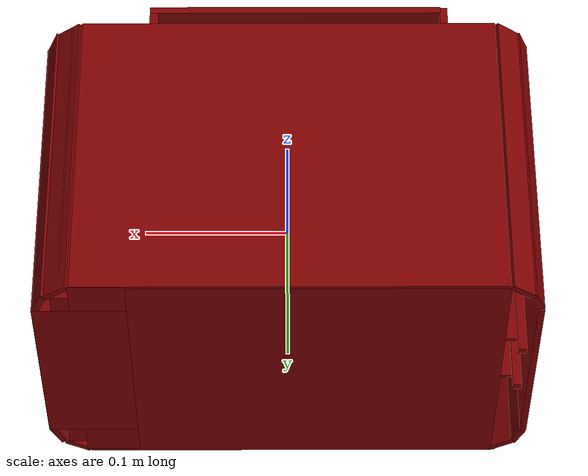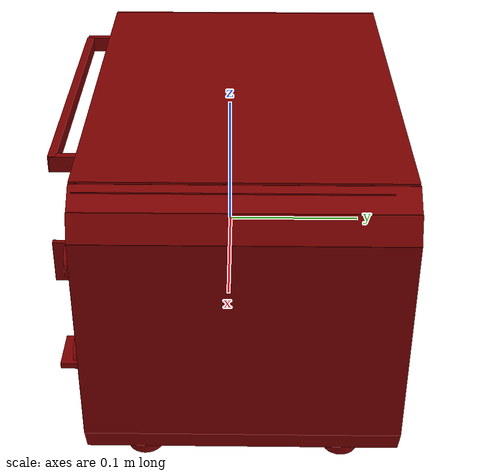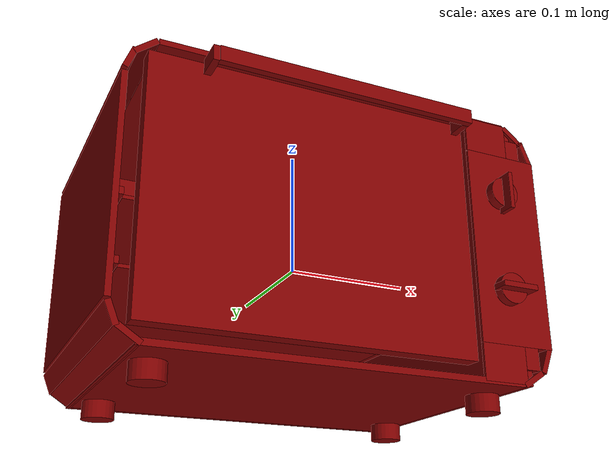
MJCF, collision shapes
<?xml version='1.0' encoding='UTF-8'?>
<mujoco model="model">
  <option timestep="0.002" gravity="0.0 0.0 -9.81"/>
  <compiler angle="radian"/>
  <asset>
    <mesh file="visuals/door.obj" name="door_vis"/>
    <mesh file="visuals/knob_temp.obj" name="knob_temp_vis"/>
    <mesh file="visuals/knob_time.obj" name="knob_time_vis"/>
    <mesh file="visuals/rack0.obj" name="rack0_vis"/>
    <mesh file="visuals/rack1.obj" name="rack1_vis"/>
    <mesh file="visuals/Body001.obj" name="Body001_vis"/>
    <mesh file="visuals/window.obj" name="window_vis"/>
    <texture file="visuals/T_BC001.png" name="Body001_material" type="2d"/>
    <material name="Body001_material" rgba="1 1 1 1.0" texture="Body001_material" shininess="0.4472135901451111" specular="0.8"/>
    <texture file="visuals/T_BC001.png" name="door_material" type="2d"/>
    <material name="door_material" rgba="1 1 1 1.0" texture="door_material" shininess="0.4472135901451111" specular="0.3103448502657381"/>
    <texture file="visuals/T_BC001.png" name="window_material" type="2d"/>
    <material name="window_material" rgba="1 1 1 0.7325905561447144" texture="window_material" shininess="0.4472135901451111" specular="0.3103448502657381"/>
    <texture file="visuals/T_BC001.png" name="knob_temp_material" type="2d"/>
    <material name="knob_temp_material" rgba="1 1 1 1.0" texture="knob_temp_material" shininess="0.4472135901451111" specular="0.3103448502657381"/>
    <texture file="visuals/T_BC001.png" name="knob_time_material" type="2d"/>
    <material name="knob_time_material" rgba="1 1 1 1.0" texture="knob_time_material" shininess="0.4472135901451111" specular="0.3103448502657381"/>
    <texture file="visuals/T_BC001.png" name="rack0_material" type="2d"/>
    <material name="rack0_material" rgba="1 1 1 1.0" texture="rack0_material" shininess="0.4472135901451111" specular="0.3103448502657381"/>
    <texture file="visuals/T_BC001.png" name="rack1_material" type="2d"/>
    <material name="rack1_material" rgba="1 1 1 1.0" texture="rack1_material" shininess="0.4472135901451111" specular="0.3103448502657381"/>
  </asset>
  <default>
    <default class="visual">
      <geom conaffinity="0" contype="0" group="1" type="mesh"/>
    </default>
    <default class="collision">
      <geom group="0" rgba="0.5 0 0 0.5"/>
    </default>
    <default class="spawn">
      <geom group="0" rgba="1 1 1 0.5" contype="0" conaffinity="0"/>
      <site group="0" rgba="1 1 1 0.5"/>
    </default>
    <default class="region">
      <geom group="1" conaffinity="0" contype="0" rgba="0 1 0 0"/>
    </default>
  </default>
  <worldbody>
    <body>
      <body name="object">
        <geom mesh="Body001_vis" type="mesh" solimp="0.998 0.998 0.001" solref="0.001 1" friction="0.95 0.3 0.1" class="visual" material="Body001_material"/>
        <geom class="collision" type="cylinder" pos="-0.12925968 -0.05991324 -0.10614405" size="0.012784481048583984 0.008236567489802837" quat="1.0 0.0 0.0 0.0"/>
        <geom class="collision" type="cylinder" pos="0.12940380 -0.06023637 -0.10614405" size="0.012784481048583984 0.008236567489802837" quat="1.0 0.0 0.0 0.0"/>
        <geom class="collision" type="cylinder" pos="-0.12922028 0.08295293 -0.10614405" size="0.012784481048583984 0.008236567489802837" quat="1.0 0.0 0.0 0.0"/>
        <geom class="collision" type="cylinder" pos="0.12940380 0.08238549 -0.10614405" size="0.012784481048583984 0.008236567489802837" quat="1.0 0.0 0.0 0.0"/>
        <geom class="collision" type="box" pos="-0.00365839 0.01052199 -0.09806444" size="0.14415860176086426 0.10873482376337051 0.0024298548232764006" quat="1.0 0.0 0.0 0.0"/>
        <geom class="collision" type="box" pos="-0.00111267 0.01052157 0.11220571" size="0.1429423689842224 0.10873539745807648 0.002185462974011898" quat="1.0 0.0 0.0 0.0"/>
        <geom class="collision" type="box" pos="-0.16612053 0.01051935 0.00566913" size="0.0021834021899849176 0.10873875021934509 0.07840549200773239" quat="1.0 0.0 0.0 0.0"/>
        <geom class="collision" type="box" pos="0.13698182 0.01051946 0.00750485" size="0.031322114169597626 0.10873860865831375 0.07768809050321579" quat="1.0 0.0 0.0 0.0"/>
        <geom class="collision" type="box" pos="-0.00387429 0.11684954 0.00572760" size="0.14104901254177094 0.0024080148432403803 0.10631757974624634" quat="1.0 0.0 0.0 0.0"/>
        <geom class="collision" type="box" pos="0.12745452 0.00362502 0.00615247" size="0.02189512550830841 0.09946140646934509 0.10486149787902832" quat="1.0 0.0 0.0 0.0"/>
        <geom class="collision" type="box" pos="-0.16292161 0.01051935 0.09482110" size="0.0021834021899849176 0.10873820632696152 0.008513877168297768" quat="0.9822958111763 0.0 0.18733632564544678 0.0"/>
        <geom class="collision" type="box" pos="-0.15273596 0.01051935 0.10645324" size="0.0021834024228155613 0.10873820632696152 0.009985403157770634" quat="0.8979359865188599 1.6935906010928647e-09 0.44012612104415894 -8.880324031679265e-09"/>
        <geom class="collision" type="box" pos="0.15094584 0.01051935 0.10635876" size="0.0021834021899849176 0.10873820632696152 0.009985403157770634" quat="0.8979359269142151 1.6935878255353032e-09 -0.4401261508464813 8.880320478965587e-09"/>
        <geom class="collision" type="box" pos="0.16224737 0.01051935 0.09345286" size="0.0021834021899849176 0.10873820632696152 0.009985402226448059" quat="0.9822958111763 0.0 -0.18733631074428558 0.0"/>
        <geom class="collision" type="box" pos="0.12434023 0.01051946 0.09869085" size="0.018680520355701447 0.1087382584810257 0.01488926075398922" quat="1.0 0.0 0.0 0.0"/>
        <geom class="collision" type="box" pos="0.14901461 0.01051946 0.09249817" size="0.006062167696654797 0.10873822122812271 0.00869657751172781" quat="1.0 0.0 0.0 0.0"/>
        <geom class="collision" type="box" pos="-0.15207590 0.01051935 -0.09371886" size="0.0021834021899849176 0.10873820632696152 0.009985403157770634" quat="0.8803845047950745 -7.734415330418187e-10 -0.4742605984210968 -7.759309639254752e-09"/>
        <geom class="collision" type="box" pos="-0.16286530 0.01051935 -0.08215088" size="0.0021834021899849176 0.10873820632696152 0.008360877633094788" quat="0.9822958111763 0.0 -0.18733631074428558 0.0"/>
        <geom class="collision" type="box" pos="0.16240656 0.01051935 -0.07882053" size="0.0021834021899849176 0.10873820632696152 0.009985402226448059" quat="0.9822958111763 0.0 0.1873362958431244 0.0"/>
        <geom class="collision" type="box" pos="0.14905944 0.01051935 -0.09371886" size="0.0021834021899849176 0.10873820632696152 0.009985403157770634" quat="0.8803845047950745 -7.734370921497202e-10 0.4742605984210968 7.759304310184234e-09"/>
        <geom class="collision" type="box" pos="0.12434023 0.01051946 -0.08362965" size="0.018680520355701447 0.10873817652463913 0.01488926075398922" quat="1.0 0.0 0.0 0.0"/>
        <geom class="collision" type="box" pos="0.14901461 0.01051946 -0.07847610" size="0.006062167696654797 0.10873813927173615 0.00869657751172781" quat="1.0 0.0 0.0 0.0"/>
        <geom class="collision" type="box" pos="-0.16229315 0.00788383 0.00364095" size="0.004429161548614502 0.0927780419588089 0.0026664738543331623" quat="1.0 0.0 0.0 0.0"/>
        <geom class="collision" type="box" pos="-0.16229315 0.00788383 -0.04377421" size="0.004429161548614502 0.0927780419588089 0.002666473388671875" quat="1.0 0.0 0.0 0.0"/>
        <geom class="collision" type="box" pos="0.10459356 0.00788383 0.00364095" size="0.004429161548614502 0.0927780419588089 0.0026664738543331623" quat="1.0 0.0 0.0 0.0"/>
        <geom class="collision" type="box" pos="0.10459356 0.00788383 -0.04377421" size="0.004429161548614502 0.0927780419588089 0.002666473388671875" quat="1.0 0.0 0.0 0.0"/>
        <body name="door">
          <joint axis="1.0 0.0 0.0" pos="-0.03051362 -0.09854637 -0.09766851" limited="true" name="door_joint" range="0.0 1.3707963267948966" type="hinge" damping="1" frictionloss="1" armature=".01" stiffness="0.05"/>
          <geom mesh="door_vis" type="mesh" solimp="0.998 0.998 0.001" solref="0.001 1" friction="0.95 0.3 0.1" class="visual" material="door_material"/>
          <geom class="collision" type="box" pos="-0.02566898 -0.09245975 0.00908966" size="0.1255735456943512 0.0060557955875992775 0.09455163776874542" quat="1.0 0.0 0.0 0.0" name="door_main"/>
          <geom class="collision" type="box" pos="-0.00574672 -0.11657561 0.10069191" size="0.10168378055095673 0.0026751032564789057 0.005733071360737085" quat="1.0 0.0 0.0 0.0" name="door_handle_main"/>
          <geom class="collision" type="box" pos="-0.10939748 -0.10843975 0.10069191" size="0.0026750427205115557 0.009932979010045528 0.005732994060963392" quat="1.0 0.0 0.0 0.0"/>
          <geom class="collision" type="box" pos="0.09334794 -0.10843975 0.10069191" size="0.0026750483084470034 0.009932991117238998 0.005732994060963392" quat="1.0 0.0 0.0 0.0"/>
          <body name="window">
            <geom mesh="window_vis" type="mesh" solimp="0.998 0.998 0.001" solref="0.001 1" friction="0.95 0.3 0.1" class="visual" material="window_material"/>
            <geom class="collision" type="box" pos="-0.01841388 -0.09116341 0.00700601" size="0.12179452180862427 0.0019127419218420982 0.0825042873620987" quat="1.0 0.0 0.0 0.0"/>
          </body>
        </body>
        <body name="knob_temp">
          <joint axis="0.0 1.0 0.0" pos="0.13149740 -0.10552304 -0.02855366" limited="true" name="knob_temp_joint" range="0.0 3.141592653589793" type="hinge" damping="0.05" armature="1" frictionloss="0.75"/>
          <geom mesh="knob_temp_vis" type="mesh" solimp="0.998 0.998 0.001" solref="0.001 1" friction="0.95 0.3 0.1" class="visual" material="knob_temp_material"/>
          <geom class="collision" type="cylinder" pos="0.13210116 -0.10211063 -0.02795771" size="0.011982725001871586 0.0036792955361306667" quat="0.7071068286895752 0.7071067690849304 1.5700924318127872e-16 5.9269340452702814e-24" friction="100 0.5 0.01"/>
          <geom class="collision" type="box" pos="0.13207524 -0.10798912 -0.02831000" size="0.0151163749396801 0.006026469636708498 0.002072633244097233" quat="1.0 0.0 0.0 0.0" name="knob_temp_main" friction="100 0.5 0.01"/>
        </body>
        <body name="knob_time">
          <joint axis="0.0 1.0 0.0" pos="0.13210116 -0.10552306 0.04959524" limited="true" name="knob_time_joint" range="0.0 3.9444441095071845" type="hinge" damping="0.05" armature="1" frictionloss="0.75"/>
          <geom mesh="knob_time_vis" type="mesh" solimp="0.998 0.998 0.001" solref="0.001 1" friction="0.95 0.3 0.1" class="visual" material="knob_time_material"/>
          <geom class="collision" type="cylinder" pos="0.13210116 -0.10211063 0.05009907" size="0.011982725001871586 0.0036792955361306667" quat="0.7071068286895752 0.7071067690849304 1.5700924318127872e-16 5.9269340452702814e-24" friction="100 0.5 0.01"/>
          <geom class="collision" type="box" pos="0.13211204 -0.10707186 0.04895290" size="0.001737714628688991 0.006641484331339598 0.014822889119386673" quat="1.0 0.0 0.0 0.0" name="knob_time_main" friction="100 0.5 0.01"/>
        </body>
        <body name="rack0">
          <geom class="region" name="reg_rack0" type="box" pos="-0.029296324999999998 0.004812524999999998 -0.02228138" size="0.128338155 0.081377665 0.02300623"/>
          <joint axis="0.0 -1.0 0.0" pos="-0.02904146 0.00018481 -0.04263158" limited="true" name="rack0_joint" range="0.0 0.15" type="slide" damping="1" frictionloss="1" armature=".01" stiffness="0.05"/>
          <geom mesh="rack0_vis" type="mesh" solimp="0.998 0.998 0.001" solref="0.001 1" friction="0.95 0.3 0.1" class="visual" material="rack0_material"/>
          <geom class="collision" type="box" pos="-0.02890119 0.00551655 -0.04571487" size="0.12858974933624268 0.08546942472457886 0.0012735245982185006" quat="1.0 0.0 0.0 0.0"/>
        </body>
        <body name="rack1">
          <geom class="region" name="reg_rack1" type="box" pos="-0.029296324999999998 0.004812524999999998 0.051802259999999996" size="0.128338155 0.081377665 0.04965004"/>
          <joint axis="0.0 -1.0 0.0" pos="-0.02868086 -0.00015027 0.00468012" limited="true" name="rack1_joint" range="0.0 0.15" type="slide" damping="1" frictionloss="1" armature=".01" stiffness="0.05"/>
          <geom mesh="rack1_vis" type="mesh" solimp="0.998 0.998 0.001" solref="0.001 1" friction="0.95 0.3 0.1" class="visual" material="rack1_material"/>
          <geom class="collision" type="box" pos="-0.02879722 0.00525285 0.00183188" size="0.12874439358711243 0.08498284965753555 0.001328382990323007" quat="1.0 0.0 0.0 0.0"/>
        </body>
        <geom class="region" name="reg_main" type="box" pos="4.999999997368221e-09 0.01028801 0.0" size="0.169303895 0.10996954 0.11539118"/>
      </body>
    </body>
  </worldbody>
  <actuator>
    <motor name="door_joint_actuator" joint="door_joint" gear="50"/>
    <motor name="knob_temp_joint_actuator" joint="knob_temp_joint" gear="50"/>
    <motor name="knob_time_joint_actuator" joint="knob_time_joint" gear="50"/>
    <motor name="rack0_joint_actuator" joint="rack0_joint" gear="50"/>
    <motor name="rack1_joint_actuator" joint="rack1_joint" gear="50"/>
  </actuator>
</mujoco>
